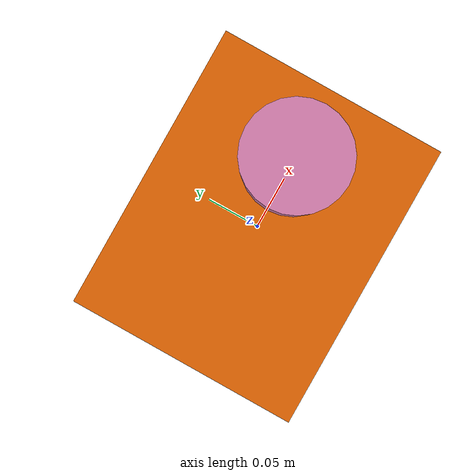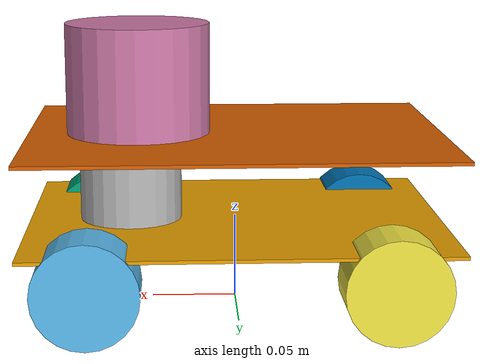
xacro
<?xml version="1.0"?>
<robot name="mobile_manipulator" xmlns:xacro="http://www.ros.org/wiki/xacro">

  <!-- ===================== 底盘尺寸（米） ===================== -->
  <!-- 待实测：卷尺量含轮外缘的长、宽，以及底盘底面离地高度。 -->
  <xacro:property name="base_length"    value="0.245"/>
  <xacro:property name="base_width"     value="0.195"/>
  <!-- 2026-11-02 实测：底盘是一块 2 mm 厚板，板面离地 50 mm。 -->
  <xacro:property name="base_thickness" value="0.002"/>
  <xacro:property name="base_plate_top_z" value="0.050"/>

  <!-- ===================== 轮系（米） ===================== -->
  <!-- 2026-11-02 实测：轮距（左右轮心距）165 mm、轴距（前后轴心距）170 mm。
       wheel_separation 必须等于固件 SET_PARAM 0x01 的轮距（默认 165 mm），
       否则 /odom 的 pose 与 twist 会对不上（见 base.yaml 的说明）。 -->
  <xacro:property name="wheel_separation" value="0.165"/>
  <xacro:property name="wheelbase"        value="0.170"/>
  <xacro:property name="wheel_radius"     value="0.030"/>
  <xacro:property name="wheel_width"      value="0.035"/>

  <!-- ===================== 第二层板 ===================== -->
  <!-- 2026-11-02 实测：二层板也是 2 mm 厚，板面距底盘板上方 50 mm；
       X2 雷达夹在两层之间。deck2_top_z 是二层板上表面。 -->
  <xacro:property name="deck2_gap"         value="0.050"/>
  <xacro:property name="deck2_thickness"   value="0.002"/>
  <xacro:property name="deck2_top_z"       value="${base_plate_top_z + deck2_gap + deck2_thickness}"/>
  <xacro:property name="deck2_length"      value="0.245"/>  <!-- 待实测 -->
  <xacro:property name="deck2_width"       value="0.195"/>  <!-- 待实测 -->

  <!-- ===================== 机械臂底座 ===================== -->
  <!-- 2026-11-02 实测：旋转底座中心距车头 65 mm，直径 85 mm，高 65 mm；
       arm_base_link 就是旋转轴中心。 -->
  <xacro:property name="arm_from_front"    value="0.065"/>
  <xacro:property name="arm_base_x"        value="${base_length / 2 - arm_from_front}"/>
  <xacro:property name="arm_base_y"        value="0.000"/>
  <xacro:property name="arm_base_height"   value="0.065"/>
  <xacro:property name="arm_base_offset_z" value="0.000"/>  <!-- 底座是否另有加高垫 -->
  <xacro:property name="arm_base_radius"   value="0.0425"/>

  <!-- ===================== 雷达（米） ===================== -->
  <!-- 2026-11-02 实测：X2 在车头，雷达中心距车头 60 mm；横向居中。
       base_link 在底盘几何中心，车头在 +x 方向 base_length/2 处。 -->
  <xacro:property name="laser_from_front" value="0.060"/>
  <xacro:property name="laser_x" value="${base_length / 2 - laser_from_front}"/>
  <xacro:property name="laser_y" value="0.000"/>
  <!-- X2 坐在底盘板面（0.050 m），本体高 50.3 mm，激光中心距顶部 7.9 mm，
       所以扫描中心约 0.050 + 0.0503 - 0.0079 = 0.0924 m。 -->
  <xacro:property name="laser_center_below_top" value="0.0079"/>
  <xacro:property name="laser_height" value="0.0503"/>
  <xacro:property name="laser_z" value="${base_plate_top_z + laser_height - laser_center_below_top}"/>
  <!-- 安装偏航角一律放 config/lidar.yaml 的 angle_offset_deg，
       这里保持 0，两处都设会重复旋转，地图会整体歪一个角度。 -->
  <xacro:property name="laser_yaw" value="0.000"/>
  <xacro:property name="laser_radius" value="0.03025"/>

  <!-- ===================== 底盘本体 ===================== -->
  <link name="base_link">
    <visual>
      <origin xyz="0 0 ${base_plate_top_z - base_thickness / 2}" rpy="0 0 0"/>
      <geometry>
        <box size="${base_length} ${base_width} ${base_thickness}"/>
      </geometry>
    </visual>
  </link>

  <!-- ===================== 四个麦克纳姆轮 ===================== -->
  <!-- 轮子用 fixed 关节：固件只上报转速，没有轮子转角，continuous 关节
       缺少 joint_states 会让 robot_state_publisher 报错刷屏。等机械臂接入、
       引入 joint_state_publisher 后再考虑改成 continuous。 -->
  <xacro:macro name="wheel" params="name x y">
    <link name="${name}">
      <visual>
        <!-- 圆柱默认沿 z 轴，绕 x 转 90° 后轴向变成 y，即轮轴方向。 -->
        <origin xyz="0 0 0" rpy="1.5707963267948966 0 0"/>
        <geometry>
          <cylinder radius="${wheel_radius}" length="${wheel_width}"/>
        </geometry>
      </visual>
    </link>

    <joint name="${name}_joint" type="fixed">
      <parent link="base_link"/>
      <child link="${name}"/>
      <origin xyz="${x} ${y} ${wheel_radius}" rpy="0 0 0"/>
    </joint>
  </xacro:macro>

  <xacro:wheel name="wheel_fl" x="${wheelbase / 2}"  y="${wheel_separation / 2}"/>
  <xacro:wheel name="wheel_fr" x="${wheelbase / 2}"  y="${-wheel_separation / 2}"/>
  <xacro:wheel name="wheel_rl" x="${-wheelbase / 2}" y="${wheel_separation / 2}"/>
  <xacro:wheel name="wheel_rr" x="${-wheelbase / 2}" y="${-wheel_separation / 2}"/>

  <!-- ===================== 第二层板 ===================== -->
  <link name="deck2_link">
    <visual>
      <!-- 坐标系放在板的上表面，视觉体往下一块板厚。 -->
      <origin xyz="0 0 ${-deck2_thickness / 2}" rpy="0 0 0"/>
      <geometry>
        <box size="${deck2_length} ${deck2_width} ${deck2_thickness}"/>
      </geometry>
    </visual>
  </link>

  <joint name="deck2_joint" type="fixed">
    <parent link="base_link"/>
    <child link="deck2_link"/>
    <origin xyz="0 0 ${deck2_top_z}" rpy="0 0 0"/>
  </joint>

  <!-- ===================== 机械臂底座 ===================== -->
  <!-- arm_base_link = 旋转轴中心。三个臂节（arm_link1~3）等量完长度再加，
       它们挂在 arm_base_link 下面，不影响现在的 TF 树。 -->
  <link name="arm_base_link">
    <visual>
      <!-- 立柱从第二层板延伸到本坐标系原点，所以视觉中心在原点下方一半处。 -->
      <origin xyz="0 0 ${-(arm_base_height + arm_base_offset_z) / 2}" rpy="0 0 0"/>
      <geometry>
        <cylinder radius="${arm_base_radius}"
                  length="${arm_base_height + arm_base_offset_z}"/>
      </geometry>
    </visual>
  </link>

  <joint name="arm_base_joint" type="fixed">
    <parent link="deck2_link"/>
    <child link="arm_base_link"/>
    <origin xyz="${arm_base_x} ${arm_base_y} ${arm_base_height + arm_base_offset_z}"
            rpy="0 0 0"/>
  </joint>

  <!-- ===================== 激光雷达 ===================== -->
  <link name="laser_link">
    <visual>
      <!-- laser_link 是扫描中心；X2 本体中心比扫描中心低 17.25 mm。 -->
      <origin xyz="0 0 ${laser_center_below_top - laser_height / 2}" rpy="0 0 0"/>
      <geometry>
        <cylinder radius="${laser_radius}" length="${laser_height}"/>
      </geometry>
    </visual>
  </link>

  <joint name="laser_joint" type="fixed">
    <parent link="base_link"/>
    <child link="laser_link"/>
    <origin xyz="${laser_x} ${laser_y} ${laser_z}" rpy="0 0 ${laser_yaw}"/>
  </joint>

</robot>
